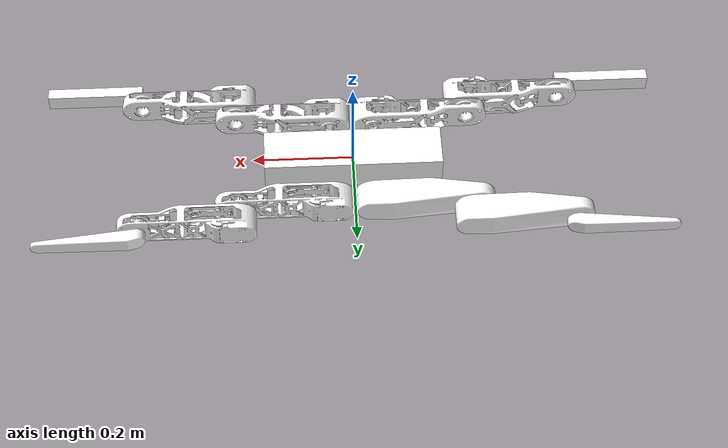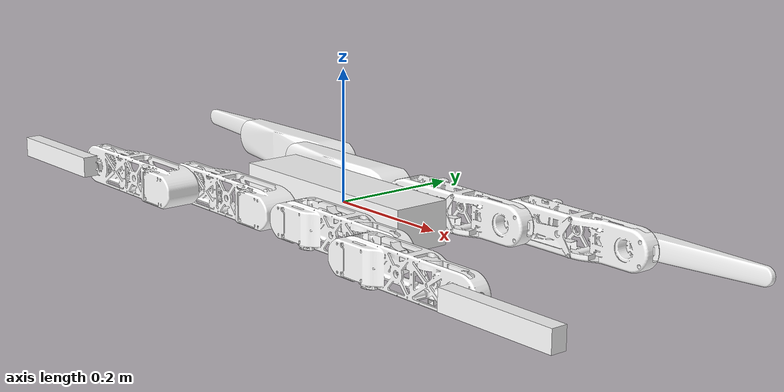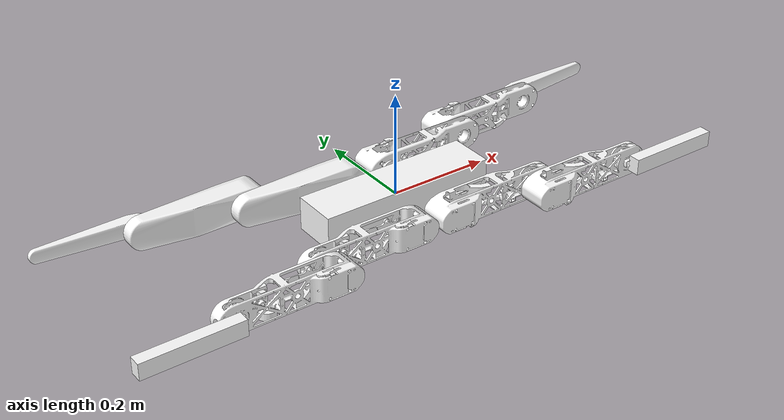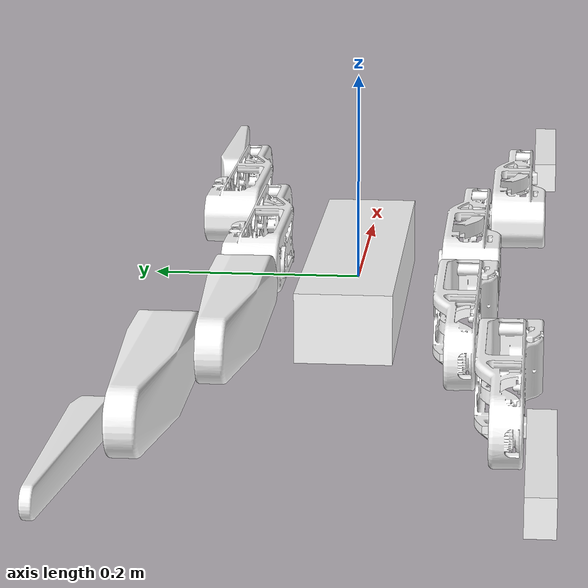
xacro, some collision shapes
<?xml version="1.0"?>
<robot name="mulinex" xmlns:xacro="http://ros.org/wiki/xacro">

    <xacro:include filename="$(find mulinex_description)/urdf/links.xacro" />
    <xacro:include filename="$(find mulinex_description)/urdf/leg.xacro" />
    <xacro:include filename="$(find mulinex_description)/urdf/material.xacro" />

    <xacro:property name="use_gazebo" value="true" />
    <xacro:property name="simplify_meshes_lower_leg" value="true"/>
    <xacro:property name="add_wheels" value="false"/>
    <xacro:property name="jnt_prefix" value="" />
    <xacro:property name="hind_haa" value="0.0" />
    <xacro:property name="hind_hfe" value="0.0" />
    <xacro:property name="hind_kfe" value="0.0" />
    <xacro:property name="front_haa" value="0.0" />
    <xacro:property name="front_hfe" value="0.0" />
    <xacro:property name="front_kfe" value="0.0" />

    <link name="${jnt_prefix}base_link">
        <visual>
            <material name="white" />
            <origin xyz="0 0 0" rpy="0 0 0" />
            <geometry>
                <mesh filename="${mulinex_base}" />
            </geometry>
        </visual>
        <collision>
            <origin xyz="0 0 0" rpy="0 0 0" />
            <geometry>
                <box size="0.353 0.090 0.066" />
            </geometry>
        </collision>
        <inertial>
            <mass value="1.3008737" />
            <origin xyz="-1.4565496e-03 -2.5110071e-03 -4.2484136e-03" rpy="0 0 0" />
            <inertia ixx="4.0762590e-03" ixy="-2.5234809e-05" ixz="-3.2587794e-06"
                iyy="9.2413606e-03" iyz="-8.0660183e-06"
                izz="1.2268730e-02" />
        </inertial>
    </link>

    <xacro:leg
        prefix="LH"
        gazebo="${use_gazebo}"
        jnt_pref="${jnt_prefix}"
        simplify_meshes="${simplify_meshes_lower_leg}"
        wheels="${add_wheels}" />
    <xacro:leg
        prefix="LF"
        gazebo="${use_gazebo}"
        jnt_pref="${jnt_prefix}"
        simplify_meshes="${simplify_meshes_lower_leg}"
        wheels="${add_wheels}" />
    <xacro:leg
        prefix="RF"
        gazebo="${use_gazebo}"
        jnt_pref="${jnt_prefix}"
        simplify_meshes="${simplify_meshes_lower_leg}"
        wheels="${add_wheels}" />
    <xacro:leg
        prefix="RH"
        gazebo="${use_gazebo}"
        jnt_pref="${jnt_prefix}"
        simplify_meshes="${simplify_meshes_lower_leg}"
        wheels="${add_wheels}" />

    <xacro:if value="${use_gazebo}">
        <gazebo reference="base_link">
            <material>Gazebo/White</material>
        </gazebo>
        <gazebo>
            <plugin filename="libgazebo_ros2_control.so" name="gazebo_ros2_control">
                <parameters>$(find mulinex_gazebo)/config/mulinex_gazebo_sim_jnt_PD_IMU.yaml</parameters>
            </plugin>
        </gazebo>

        <ros2_control name="GazeboSystem" type="system">
            <hardware>
                <plugin>gazebo_ros2_control/GazeboSystem</plugin>
            </hardware>

            <joint name="LH_HAA">
                <command_interface name="effort" />
                <state_interface name="position">
                    <param name="initial_value">-${hind_haa}</param>
                </state_interface>
                <state_interface name="velocity">
                    <param name="initial_value">0.0</param>
                </state_interface>
                <state_interface name="effort" />
            </joint>
            <joint name="LH_HFE">
                <command_interface name="effort" />
                <state_interface name="position">
                    <param name="initial_value">${hind_hfe}</param>
                </state_interface>
                <state_interface name="velocity">
                    <param name="initial_value">0.0</param>
                </state_interface>
                <state_interface name="effort" />
            </joint>
            <joint name="LH_KFE">
                <command_interface name="effort" />
                <state_interface name="position">
                    <param name="initial_value">${hind_kfe}</param>
                </state_interface>
                <state_interface name="velocity">
                    <param name="initial_value">0.0</param>
                </state_interface>
                <state_interface name="effort" />
            </joint>
            <joint name="LF_HAA">
                <command_interface name="effort" />
                <state_interface name="position">
                    <param name="initial_value">-${front_haa}</param>
                </state_interface>
                <state_interface name="velocity">
                    <param name="initial_value">0.0</param>
                </state_interface>
                <state_interface name="effort" />
            </joint>
            <joint name="LF_HFE">
                <command_interface name="effort" />
                <state_interface name="position">
                    <param name="initial_value">${front_hfe}</param>
                </state_interface>
                <state_interface name="velocity">
                    <param name="initial_value">0.0</param>
                </state_interface>
                <state_interface name="effort" />
            </joint>
            <joint name="LF_KFE">
                <command_interface name="effort" />
                <state_interface name="position">
                    <param name="initial_value">${front_kfe}</param>
                </state_interface>
                <state_interface name="velocity">
                    <param name="initial_value">0.0</param>
                </state_interface>
                <state_interface name="effort" />
            </joint>
            <joint name="RH_HAA">
                <command_interface name="effort" />
                <state_interface name="position">
                    <param name="initial_value">${hind_haa}</param>
                </state_interface>
                <state_interface name="velocity">
                    <param name="initial_value">0.0</param>
                </state_interface>
                <state_interface name="effort" />
            </joint>
            <joint name="RH_HFE">
                <command_interface name="effort" />
                <state_interface name="position">
                    <param name="initial_value">${hind_hfe}</param>
                </state_interface>
                <state_interface name="velocity">
                    <param name="initial_value">0.0</param>
                </state_interface>
                <state_interface name="effort" />
            </joint>
            <joint name="RH_KFE">
                <command_interface name="effort" />
                <state_interface name="position">
                    <param name="initial_value">${hind_kfe}</param>
                </state_interface>
                <state_interface name="velocity">
                    <param name="initial_value">0.0</param>
                </state_interface>
                <state_interface name="effort" />
            </joint>
            <joint name="RF_HAA">
                <command_interface name="effort" />
                <state_interface name="position">
                    <param name="initial_value">${front_haa}</param>
                </state_interface>
                <state_interface name="velocity">
                    <param name="initial_value">0.0</param>
                </state_interface>
                <state_interface name="effort" />
            </joint>
            <joint name="RF_HFE">
                <command_interface name="effort" />
                <state_interface name="position">
                    <param name="initial_value">${front_hfe}</param>
                </state_interface>
                <state_interface name="velocity">
                    <param name="initial_value">0.0</param>
                </state_interface>
                <state_interface name="effort" />
            </joint>
            <joint name="RF_KFE">
                <command_interface name="effort" />
                <state_interface name="position">
                    <param name="initial_value">${front_kfe}</param>
                </state_interface>
                <state_interface name="velocity">
                    <param name="initial_value">0.0</param>
                </state_interface>
                <state_interface name="effort" />
            </joint>
        </ros2_control>
        <gazebo reference="base_link">
            <sensor name="br_imu" type="imu">
                <always_on>true</always_on>
                <update_rate>100</update_rate>
                <imu>
                <angular_velocity>
                    <x>
                    <noise type="gaussian">
                        <mean>0.0</mean>
                        <stddev>2e-4</stddev>
                    </noise>
                    </x>
                    <y>
                    <noise type="gaussian">
                        <mean>0.0</mean>
                        <stddev>2e-4</stddev>
                    </noise>
                    </y>
                    <z>
                    <noise type="gaussian">
                        <mean>0.0</mean>
                        <stddev>2e-4</stddev>
                    </noise>
                    </z>
                </angular_velocity>
                <linear_acceleration>
                    <x>
                    <noise type="gaussian">
                        <mean>0.0</mean>
                        <stddev>1.7e-2</stddev>
                    </noise>
                    </x>
                    <y>
                    <noise type="gaussian">
                        <mean>0.0</mean>
                        <stddev>1.7e-2</stddev>
                    </noise>
                    </y>
                    <z>
                    <noise type="gaussian">
                        <mean>0.0</mean>
                        <stddev>1.7e-2</stddev>
                    </noise>
                    </z>
                </linear_acceleration>
                </imu>
                <plugin name="bytes_imu" filename="libgazebo_ros_imu_sensor.so">
                    <ros>
                        <namespace>imu</namespace>
                        <remapping>~/out:=data</remapping>
                    </ros>
                    <initial_orientation_as_reference>false</initial_orientation_as_reference>
                </plugin>
            </sensor>
        </gazebo>

    </xacro:if>
    <xacro:unless value="${use_gazebo}">
    </xacro:unless>
</robot>

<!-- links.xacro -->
<robot xmlns:xacro="http://ros.org/wiki/xacro">

    <xacro:property name="base_2_HAA_y" value="${81.0 * 0.001}" />
    <xacro:property name="base_2_HAA_x" value="${45.0 * 0.001}" />

    <xacro:property name="HAA_2_HFE_x" value="${190.0 * 0.001}" />
    <xacro:property name="HAA_2_HFE_y" value="${44.0 * 0.001}" />

    <xacro:property name="HFE_2_KFE_x" value="${190.0 * 0.001}" />
    <xacro:property name="HFE_2_KFE_y" value="${44.0 * 0.001}" />

    <xacro:property name="KFE_2_FOOT_x" value="${190.0 * 0.001}" />
    <xacro:property name="KFE_2_FOOT_y" value="${28.0 * 0.001}" />

    <xacro:property name="PI" value="3.141592" />

    <!-- MULINEX VISUALIZATION meshes -->
    <xacro:property name="mulinex_base"
        value="file://$(find mulinex_description)/meshes//Body.stl" />
    <xacro:property name="mulinex_module_left_front"
        value="file://$(find mulinex_description)/meshes//Module_left_front.stl" />
    <xacro:property name="mulinex_module_left_hind"
        value="file://$(find mulinex_description)/meshes//Module_left_hind.stl" />
    <xacro:property name="mulinex_module_2_left"
        value="file://$(find mulinex_description)/meshes//Module_2_left.stl" />
    <xacro:property name="mulinex_lower_leg_left"
        value="file://$(find mulinex_description)/meshes//Lower_leg_left.stl" />
    <xacro:property name="mulinex_module_right_front"
        value="file://$(find mulinex_description)/meshes//Module_right_front.stl" />
    <xacro:property name="mulinex_module_right_hind"
        value="file://$(find mulinex_description)/meshes//Module_right_hind.stl" />
    <xacro:property name="mulinex_module_2_right"
        value="file://$(find mulinex_description)/meshes//Module_2_right.stl" />
    <xacro:property name="mulinex_lower_leg_right"
        value="file://$(find mulinex_description)/meshes//Lower_leg_right.stl" />

    <!-- EACH MACRO CONSISTS OF THE LINK AND ITS PREVIOUS JOINT -->

    <!-- HIP -->
    <xacro:macro name="hip" params="prefix gazebo jnt_pref ">
        <!-- Transformation based on the position of each link -->
        <xacro:if value="${prefix == 'LF'}">
            <xacro:property name="base_to_hip_xyz" value="${base_2_HAA_x} ${base_2_HAA_y} 0" />
        </xacro:if>
        <xacro:if
            value="${prefix == 'LH'}">
            <xacro:property name="base_to_hip_xyz" value="${-base_2_HAA_x} ${base_2_HAA_y} 0" />
        </xacro:if>
        <xacro:if
            value="${prefix == 'RF'}">
            <xacro:property name="base_to_hip_xyz" value="${base_2_HAA_x} ${-base_2_HAA_y} 0" />
        </xacro:if>
        <xacro:if
            value="${prefix == 'RH'}">
            <xacro:property name="base_to_hip_xyz" value="${-base_2_HAA_x} ${-base_2_HAA_y} 0" />
        </xacro:if>

        <!-- Joint to fix the leg to the base -->
        <joint name="${prefix}_HAA" type="fixed">
            <parent link="${jnt_pref}base_link" />
            <child link="${jnt_pref}${prefix}_SHOULDER" />
            <origin xyz="${base_to_hip_xyz}" rpy="0 0 0" />
        </joint>
        <!-- Shoulder link -->
        <link name="${prefix}_SHOULDER">
            <visual>
                <material name="white" />
                <xacro:if value="${prefix == 'LF'}">
                    <origin xyz="0 0 0" rpy="0 0 0" />
                    <geometry>
                        <mesh filename="${mulinex_module_left_front}" />
                    </geometry>
                </xacro:if>
                <xacro:if value="${prefix == 'LH'}">
                    <origin xyz="0 0 0" rpy="0 0 0" />
                    <geometry>
                        <mesh filename="${mulinex_module_left_hind}" />
                    </geometry>
                </xacro:if>
                <xacro:if value="${prefix == 'RF'}">
                    <origin xyz="0 0 0" rpy="0 0 0" />
                    <geometry>
                        <mesh filename="${mulinex_module_right_front}" />
                    </geometry>
                </xacro:if>
                <xacro:if value="${prefix == 'RH'}">
                    <origin xyz="0 0 0" rpy="0 0 0" />
                    <geometry>
                        <mesh filename="${mulinex_module_right_hind}" />
                    </geometry>
                </xacro:if>
            </visual>

            <collision>
                <xacro:if value="${prefix == 'LF'}">
                    <origin xyz="0.0945 0 0" rpy="0 0 0" />
                    <geometry>
                        <box size="0.269 0.057 0.060" />
                    </geometry>
                </xacro:if>
                <xacro:if value="${prefix == 'LH'}">
                    <origin xyz="-0.0945 0 0" rpy="0 0 0" />
                    <geometry>
                        <box size="0.269 0.057 0.060" />
                    </geometry>
                </xacro:if>
                <xacro:if value="${prefix == 'RF'}">
                    <origin xyz="0.0945 0 0" rpy="0 0 0" />
                    <geometry>
                        <box size="0.269 0.057 0.060" />
                    </geometry>
                </xacro:if>
                <xacro:if value="${prefix == 'RH'}">
                    <origin xyz="-0.0945 0 0" rpy="0 0 0" />
                    <geometry>
                        <box size="0.269 0.057 0.060" />
                    </geometry>
                </xacro:if>
            </collision>

            <inertial>
                <mass value="0.47669673" />
                <xacro:if value="${prefix == 'LF'}">
                    <origin
                        xyz="7.2487360e-02 3.1582591e-02 -2.4812434e-03"
                        rpy="0 0 0" />
                    <inertia ixx="2.1574269e-04" ixy="-3.3437484e-05"
                        ixz="-2.4284668e-06" iyy="3.0607390e-03"
                        iyz="-2.0388977e-06" izz="3.0504273e-03" />
                </xacro:if>
                <xacro:if value="${prefix == 'LH'}">
                    <origin
                        xyz="-7.2487360e-02 3.1582591e-02 2.4812434e-03"
                        rpy="0 0 0" />
                    <inertia ixx="2.1574269e-04" ixy="3.3437484e-05"
                        ixz="-2.4284668e-06" iyy="3.0607390e-03"
                        iyz="-2.0388977e-06" izz="3.0504273e-03" />
                </xacro:if>
                <xacro:if value="${prefix == 'RF'}">
                    <origin
                        xyz="7.2487360e-02 -3.1582591e-02 2.4812434e-03"
                        rpy="0 0 0" />
                    <inertia ixx="2.1574269e-04" ixy="3.3437484e-05"
                        ixz="2.4284668e-06" iyy="3.0607390e-03"
                        iyz="-2.0388977e-06" izz="3.0504273e-03" />
                </xacro:if>
                <xacro:if value="${prefix == 'RH'}">
                    <origin
                        xyz="-7.2487360e-02 -3.1582591e-02 -2.4812434e-03"
                        rpy="0 0 0" />
                    <inertia ixx="2.1574269e-04" ixy="-3.3437484e-05"
                        ixz="2.4284668e-06" iyy="3.0607390e-03"
                        iyz="-2.0388977e-06" izz="3.0504273e-03" />
                </xacro:if>
            </inertial>
        </link>
        <xacro:if value="${gazebo}">
            <gazebo reference="${prefix}_SHOULDER">
                <material>Gazebo/White</material>
                <collision>
                    <surface>
                        <friction>
                            <ode>
                                <mu>1</mu>
                                <mu2>1</mu2>
                                <slip1>0</slip1>
                                <slip2>0</slip2>
                            </ode>
                        </friction>
                        <contact>
                            <ode>
                                <kp>1000000.0</kp>
                                <kd>100.0</kd>
                                <min_depth>0.001</min_depth>
                            </ode>
                        </contact>
                    </surface>
                </collision>
            </gazebo>
        </xacro:if>
    </xacro:macro>

    <!-- UPPER LEG -->
    <xacro:macro name="upper_leg" params="prefix gazebo jnt_pref">
        <!-- Transformation based on the position of each link -->
        <xacro:if value="${prefix == 'LF'}">
            <xacro:property name="hip_to_upper_leg_xyz" value="${HAA_2_HFE_x} ${HAA_2_HFE_y} 0" />
            <xacro:property name="hip_to_upper_leg_rpy" value="0 0 0" />
            <xacro:property name="axis" value="0 1 0"/>
        </xacro:if>
        <xacro:if
            value="${prefix == 'LH'}">
            <xacro:property name="hip_to_upper_leg_xyz" value="${-HAA_2_HFE_x} ${HAA_2_HFE_y} 0" />
            <xacro:property name="hip_to_upper_leg_rpy" value="0 0 0" />
            <xacro:property name="axis" value="0 1 0" />
        </xacro:if>
        <xacro:if
            value="${prefix == 'RF'}">
            <xacro:property name="hip_to_upper_leg_xyz" value="${HAA_2_HFE_x} ${-HAA_2_HFE_y} 0" />
            <xacro:property name="hip_to_upper_leg_rpy" value="0 0 0" />
            <xacro:property name="axis" value="0 -1 0" />
        </xacro:if>
        <xacro:if
            value="${prefix == 'RH'}">
            <xacro:property name="hip_to_upper_leg_xyz" value="${-HAA_2_HFE_x} ${-HAA_2_HFE_y} 0" />
            <xacro:property name="hip_to_upper_leg_rpy" value="0 0 0" />
            <xacro:property name="axis" value="0 -1 0" />
        </xacro:if>
        <xacro:property name="upper_to_lower_leg_rpy" value="0 0 0" />

        <!-- Hip joint -->
        <joint name="${prefix}_HFE" type="revolute">
            <parent link="${jnt_pref}${prefix}_SHOULDER" />
            <child link="${jnt_pref}${prefix}_UPPER_LEG" />
            <origin xyz="${hip_to_upper_leg_xyz}" rpy="${hip_to_upper_leg_rpy}" />
            <axis xyz="${axis}" />
            <limit effort="2.7" lower="-${PI}" upper="${PI}" velocity="1000" />
        </joint>
        <!-- Upper leg link -->
        <link name="${prefix}_UPPER_LEG">
            <visual>
                <material name="white" />
                <xacro:if value="${prefix == 'LF'}">
                    <origin xyz="0 0 0" rpy="0 0 0" />
                    <geometry>
                        <mesh filename="${mulinex_module_left_front}" />
                    </geometry>
                </xacro:if>

                <xacro:if value="${prefix == 'LH'}">
                    <origin xyz="0 0 0" rpy="0 0 0" />
                    <geometry>
                        <mesh filename="${mulinex_module_left_hind}" />
                    </geometry>
                </xacro:if>

                <xacro:if value="${prefix == 'RF'}">
                    <origin xyz="0 0 0" rpy="0 0 0" />
                    <geometry>
                        <mesh filename="${mulinex_module_right_front}" />
                    </geometry>
                </xacro:if>

                <xacro:if value="${prefix == 'RH'}">
                    <origin xyz="0 0 0" rpy="0 0 0" />
                    <geometry>
                        <mesh filename="${mulinex_module_right_hind}"/>
                    </geometry>
                </xacro:if>
            </visual>

            <collision>
                <xacro:if value="${prefix == 'LF'}">
                    <origin xyz="0.0945 0.015 0" rpy="0 0 0" />
                    <geometry>
                        <box size="0.269 0.057 0.060" />
                    </geometry>
                </xacro:if>
                <xacro:if value="${prefix == 'LH'}">
                    <origin xyz="-0.0945 0.015 0" rpy="0 0 0" />
                    <geometry>
                        <box size="0.269 0.057 0.060" />
                    </geometry>
                </xacro:if>
                <xacro:if value="${prefix == 'RF'}">
                    <origin xyz="0.0945 -0.015 0" rpy="0 0 0" />
                    <geometry>
                        <box size="0.269 0.057 0.060" />
                    </geometry>
                </xacro:if>
                <xacro:if value="${prefix == 'RH'}">
                    <origin xyz="-0.0945 -0.015 0" rpy="0 0 0" />
                    <geometry>
                        <box size="0.269 0.057 0.060" />
                    </geometry>
                </xacro:if>

            </collision>

            <inertial>
                <mass value="0.47669673" />
                <xacro:if value="${prefix == 'LF'}">
                    <origin
                        xyz="7.2487360e-02 3.1582591e-02 -2.4812434e-03"
                        rpy="0 0 0" />
                    <inertia ixx="2.1574269e-04" ixy="-3.3437484e-05"
                        ixz="-2.4284668e-06" iyy="3.0607390e-03"
                        iyz="-2.0388977e-06" izz="3.0504273e-03" />
                </xacro:if>
                <xacro:if value="${prefix == 'LH'}">
                    <origin
                        xyz="-7.2487360e-02 3.1582591e-02 2.4812434e-03"
                        rpy="0 0 0" />
                    <inertia ixx="2.1574269e-04" ixy="3.3437484e-05"
                        ixz="-2.4284668e-06" iyy="3.0607390e-03"
                        iyz="-2.0388977e-06" izz="3.0504273e-03" />
                </xacro:if>
                <xacro:if value="${prefix == 'RF'}">
                    <origin
                        xyz="7.2487360e-02 -3.1582591e-02 2.4812434e-03"
                        rpy="0 0 0" />
                    <inertia ixx="2.1574269e-04" ixy="3.3437484e-05"
                        ixz="2.4284668e-06" iyy="3.0607390e-03"
                        iyz="-2.0388977e-06" izz="3.0504273e-03" />
                </xacro:if>
                <xacro:if value="${prefix == 'RH'}">
                    <origin
                        xyz="-7.2487360e-02 -3.1582591e-02 -2.4812434e-03"
                        rpy="0 0 0" />
                    <inertia ixx="2.1574269e-04" ixy="-3.3437484e-05"
                        ixz="2.4284668e-06" iyy="3.0607390e-03"
                        iyz="-2.0388977e-06" izz="3.0504273e-03" />
                </xacro:if>
            </inertial>
        </link>
        <xacro:if value="${gazebo}">
            <gazebo reference="${prefix}_UPPER_LEG">
                <material>Gazebo/White</material>
                <collision>
                    <surface>
                        <friction>
                            <ode>
                                <mu>1</mu>
                                <mu2>1</mu2>
                                <slip1>0</slip1>
                                <slip2>0</slip2>
                            </ode>
                        </friction>
                        <contact>
                            <ode>
                                <kp>1000000.0</kp>
                                <kd>100.0</kd>
                                <min_depth>0.001</min_depth>
                            </ode>
                        </contact>
                    </surface>
                </collision>
            </gazebo>
        </xacro:if>
    </xacro:macro>

    <!-- LOWER LEG -->
    <xacro:macro name="lower_leg" params="prefix gazebo jnt_pref simplify_meshes wheels">
        <!-- Transformation based on the position of each link -->
        <xacro:if value="${prefix == 'LF'}">
            <xacro:property name="upper_to_lower_leg_xyz" value="${HFE_2_KFE_x} ${HFE_2_KFE_y} 0" />
            <xacro:property name="axis" value="0 1 0" />
        </xacro:if>
        <xacro:if
            value="${prefix == 'LH'}">
            <xacro:property name="upper_to_lower_leg_xyz" value="${-HFE_2_KFE_x} ${HFE_2_KFE_y} 0" />
            <xacro:property name="axis" value="0 1 0" />
        </xacro:if>
        <xacro:if
            value="${prefix == 'RF'}">
            <xacro:property name="upper_to_lower_leg_xyz" value="${HFE_2_KFE_x} ${-HFE_2_KFE_y} 0" />
            <xacro:property name="axis" value="0 -1 0" />
        </xacro:if>
        <xacro:if
            value="${prefix == 'RH'}">
            <xacro:property name="upper_to_lower_leg_xyz" value="${-HFE_2_KFE_x} ${-HFE_2_KFE_y} 0" />
            <xacro:property name="axis" value="0 -1 0" />
        </xacro:if>
        <xacro:property name="upper_to_lower_leg_rpy" value="0 0 0" />

        <!-- Knee joint -->
        <joint name="${prefix}_KFE" type="revolute">
            <parent link="${jnt_pref}${prefix}_UPPER_LEG" />
            <child link="${jnt_pref}${prefix}_LOWER_LEG" />
            <origin xyz="${upper_to_lower_leg_xyz}" rpy="${upper_to_lower_leg_rpy}" />
            <axis xyz="${axis}" />
            <limit effort="2.7" lower="-${PI}" upper="${PI}" velocity="1000" />
        </joint>
        <!-- Lower leg link -->
        <link name="${prefix}_LOWER_LEG">
            <visual>
                <material name="white" />
                <xacro:if value="${prefix == 'LF'}">
                    <origin xyz="0 0 0" rpy="0 ${-PI/2} 0" />
                    <geometry>
                        <mesh filename="${mulinex_lower_leg_left}" />
                    </geometry>
                </xacro:if>
                <xacro:if value="${prefix == 'LH'}">
                    <origin xyz="0 0 0" rpy="0 ${PI/2} 0" />
                    <geometry>
                        <mesh filename="${mulinex_lower_leg_left}" />
                    </geometry>
                </xacro:if>
                <xacro:if value="${prefix == 'RF'}">
                    <origin xyz="0 0 0" rpy="0 ${-PI/2} 0" />
                    <geometry>
                        <mesh filename="${mulinex_lower_leg_right}" />
                    </geometry>
                </xacro:if>
                <xacro:if value="${prefix == 'RH'}">
                    <origin xyz="0 0 0" rpy="0 ${PI/2} 0" />
                    <geometry>
                        <mesh filename="${mulinex_lower_leg_right}" />
                    </geometry>
                </xacro:if>
            </visual>
            <collision name="${prefix}_LOWER_LEG">
                <!-- Real meshes -->
                <xacro:unless value="${simplify_meshes}">
                    <xacro:if value="${prefix == 'LF'}">
                        <origin xyz="0 0 0" rpy="0 ${-PI/2} 0" />
                        <geometry>
                            <mesh filename="${mulinex_lower_leg_left}" />
                        </geometry>
                    </xacro:if>
                    <xacro:if value="${prefix == 'LH'}">
                        <origin xyz="0 0 0" rpy="0 ${PI/2} 0" />
                        <geometry>
                            <mesh filename="${mulinex_lower_leg_left}" />
                        </geometry>
                    </xacro:if>
                    <xacro:if value="${prefix == 'RF'}">
                        <origin xyz="0 0 0" rpy="0 ${-PI/2} 0" />
                        <geometry>
                            <mesh filename="${msphereulinex_lower_leg_right}" />
                        </geometry>
                    </xacro:if>
                    <xacro:if value="${prefix == 'RH'}">
                        <origin xyz="0 0 0" rpy="0 ${PI/2} 0" />
                        <geometry>
                            <mesh filename="${mulinex_lower_leg_right}" />
                        </geometry>
                    </xacro:if>
                </xacro:unless>
                <!-- Simplified meshes -->
                <xacro:if value="${simplify_meshes}">
                    <xacro:if value="${prefix == 'LF'}">
                        <origin xyz="0.096 0.012 0.0" rpy="0 ${-PI/2} 0" />
                        <geometry>
                            <box size="0.032 0.024 0.192" />
                        </geometry>
                    </xacro:if>
                    <xacro:if value="${prefix == 'LH'}">
                        <origin xyz="-0.096 0.012 0.0" rpy="0 ${PI/2} 0" />
                        <geometry>
                            <box size="0.032 0.024 0.192" />
                        </geometry>
                    </xacro:if>
                    <xacro:if value="${prefix == 'RF'}">
                        <origin xyz="0.096 -0.012 0.0" rpy="0 ${-PI/2} 0" />
                        <geometry>
                            <box size="0.032 0.024 0.192" />
                        </geometry>
                    </xacro:if>
                    <xacro:if value="${prefix == 'RH'}">
                        <origin xyz="-0.096 -0.012 0.0" rpy="0 ${PI/2} 0" />
                        <geometry>
                            <box size="0.032 0.024 0.192" />
                        </geometry>
                    </xacro:if>
                </xacro:if>
            </collision>
            <inertial>
                <mass value="0.046942" />
                <xacro:if value="${prefix == 'LF'}">
                    <origin
                        xyz="0.0660893 0.0198901 -1.552593e-05"
                        rpy="0 0 0" />
                    <inertia ixx="5.140780e-06" ixy="1.089102e-05"
                        ixz="2.468115e-08" iyy="0.00021242"
                        iyz="2.702972e-09" izz="0.00021154" />
                </xacro:if>
                <xacro:if value="${prefix == 'LH'}">
                    <origin
                        xyz="-0.0660893 0.0198901 1.552593e-05"
                        rpy="0 0 0" />
                    <inertia ixx="5.140780e-06" ixy="-1.089102e-05"
                        ixz="2.46811e-08" iyy="0.0002124295"
                        iyz="-2.702972e-09" izz="0.0002115478" />
                </xacro:if>
                <xacro:if value="${prefix == 'RF'}">
                    <origin
                        xyz="0.0660893 -0.0198901 -1.552593e-05"
                        rpy="0 0 0" />
                    <inertia ixx="5.140780e-06" ixy="1.089102e-05"
                        ixz="-2.468115e-08" iyy="0.00021242"
                        iyz="-2.702972e-09" izz="0.00021154" />
                </xacro:if>
                <xacro:if value="${prefix == 'RH'}">
                    <origin
                        xyz="-0.0660893 -0.0198901 1.552593e-05"
                        rpy="0 0 0" />
                    <inertia ixx="5.140780e-06" ixy="-1.089102e-05"
                        ixz="-2.46811e-08" iyy="0.0002124295"
                        iyz="2.702972e-09" izz="0.0002115478" />
                </xacro:if>
            </inertial>
        </link>
        <xacro:if value="${gazebo}">
            <gazebo reference="${prefix}_LOWER_LEG">
                <material>Gazebo/White</material>
                <collision>
                    <surface>
                        <friction>
                            <ode>
                                <mu>0.6</mu>
                                <mu2>0.6</mu2>
                                <slip1>0</slip1>
                                <slip2>0</slip2>
                            </ode>
                        </friction>
                        <contact>
                            <ode>
                                <kp>10000.0</kp>
                                <kd>100.0</kd>
                                <min_depth>0.001</min_depth>
                            </ode>
                        </contact>
                    </surface>
                </collision>
            </gazebo>
        </xacro:if>
        <!-- Include wheels -->
        <xacro:if value="${wheels}">
            <joint name="${prefix}_ANKLE" type="continuous">
                <parent link="${prefix}_LOWER_LEG" />
                <child link="${prefix}_WHEEL" />
                <xacro:if value="${prefix == 'LF'}">
                    <origin xyz="${KFE_2_FOOT_x} ${KFE_2_FOOT_y} 0" rpy="0 0 0" />
                    <axis xyz="0 1 0" />
                </xacro:if>
                <xacro:if value="${prefix == 'LH'}">
                    <origin xyz="${-KFE_2_FOOT_x} ${KFE_2_FOOT_y} 0" rpy="0 0 0" />
                    <axis xyz="0 1 0" />
                </xacro:if>
                <xacro:if value="${prefix == 'RF'}">
                    <origin xyz="${KFE_2_FOOT_x} ${-KFE_2_FOOT_y} 0" rpy="0 0 0" />
                    <axis xyz="0 1 0" />
                </xacro:if>
                <xacro:if value="${prefix == 'RH'}">
                    <origin xyz="${-KFE_2_FOOT_x} ${-KFE_2_FOOT_y} 0" rpy="0 0 0" />
                    <axis xyz="0 1 0" />
                </xacro:if>
            </joint>

            <link name="${prefix}_WHEEL">
                <visual>
                    <material name="white" />
                    <origin xyz="0 0 0" rpy="${PI/2} 0 0" />
                    <geometry>
                        <cylinder length="0.10" radius="0.015" />
                    </geometry>
                </visual>
                <xacro:if value="${simplify_meshes}">
                    <collision>
                        <origin xyz="0 0 0" rpy="${PI/2} 0 0" />
                        <geometry>
                            <cylinder length="0.10" radius="0.015" />
                        </geometry>
                    </collision>
                </xacro:if>
            </link>
            <xacro:if value="${gazebo}">
                <gazebo reference="${prefix}_WHEEL">
                    <material>Gazebo/White</material>
                    <collision>
                        <surface>
                            <friction>
                                <ode>
                                    <mu>0.6</mu>
                                    <mu2>0.6</mu2>
                                    <slip1>0</slip1>
                                    <slip2>0</slip2>
                                </ode>
                            </friction>
                            <contact>
                                <ode>
                                    <kp>10000.0</kp>
                                    <kd>100.0</kd>
                                    <min_depth>0.001</min_depth>
                                </ode>
                            </contact>
                        </surface>
                    </collision>
                    <sensor name="${prefix}_contactsensor_sensor" type="contact">
                        <always_on>true</always_on>
                        <update_rate>50</update_rate>
                        <contact>
                            <collision>
                                ${prefix}_LOWER_LEG_fixed_joint_lump__${prefix}_FOOT_collision_1</collision>
                        </contact>

                    </sensor>
                </gazebo>
            </xacro:if>

            <joint name="${prefix}_DIRECTION" type="fixed">
                <parent link="${prefix}_WHEEL" />
                <child link="${prefix}_INDICATOR" />
                <xacro:if value="${prefix == 'LF'}">
                    <origin xyz="0 0.0501 0" rpy="0 0 0" />
                </xacro:if>
                <xacro:if value="${prefix == 'LH'}">
                    <origin xyz="0 0.0501 0" rpy="0 0 0" />
                </xacro:if>
                <xacro:if value="${prefix == 'RF'}">
                    <origin xyz="0 -0.0501 0" rpy="0 0 0" />
                </xacro:if>
                <xacro:if value="${prefix == 'RH'}">
                    <origin xyz="0 -0.0501 0" rpy="0 0 0" />
                </xacro:if>
            </joint>

            <link name="${prefix}_INDICATOR">
                <visual>
                    <origin xyz="0 0 0.0075" rpy="0 0 0" />
                    <geometry>
                        <box size="0.004 0.0001 0.015" />
                    </geometry>
                    <material name="red" />
                </visual>
            </link>
        </xacro:if>
        <!-- Without wheels -->
        <xacro:unless value="${wheels}">
            <joint name="${prefix}_ANKLE" type="fixed">
                <parent link="${prefix}_LOWER_LEG" />
                <child link="${prefix}_FOOT" />

                <xacro:if value="${prefix == 'LF'}">
                    <origin xyz="${KFE_2_FOOT_x} ${KFE_2_FOOT_y} 0" rpy="0 0 0" />
                </xacro:if>
                <xacro:if value="${prefix == 'LH'}">
                    <origin xyz="${-KFE_2_FOOT_x} ${KFE_2_FOOT_y} 0" rpy="0 0 0" />
                </xacro:if>
                <xacro:if value="${prefix == 'RF'}">
                    <origin xyz="${KFE_2_FOOT_x} ${-KFE_2_FOOT_y} 0" rpy="0 0 0" />
                </xacro:if>
                <xacro:if value="${prefix == 'RH'}">
                    <origin xyz="${-KFE_2_FOOT_x} ${-KFE_2_FOOT_y} 0" rpy="0 0 0" />
                </xacro:if>

            </joint>

            <link name="${prefix}_FOOT">
                <xacro:if value="${simplify_meshes}">
                    <collision>
                        <origin xyz="0 0 0" rpy="0 0 0" />
                        <geometry>
                            <sphere radius="0.015" />
                        </geometry>
                    </collision>
                </xacro:if>
            </link>
            <xacro:if value="${gazebo}">
                <gazebo reference="${prefix}_FOOT">
                    <material>Gazebo/White</material>
                    <collision>
                        <surface>
                            <friction>
                                <ode>
                                    <mu>0.6</mu>
                                    <mu2>0.6</mu2>
                                    <slip1>0</slip1>
                                    <slip2>0</slip2>
                                </ode>
                            </friction>
                            <contact>
                                <ode>
                                    <kp>10000.0</kp>
                                    <kd>100.0</kd>
                                    <min_depth>0.001</min_depth>
                                </ode>
                            </contact>
                        </surface>
                    </collision>
                    <sensor name="${prefix}_contactsensor_sensor" type="contact">
                        <always_on>true</always_on>
                        <update_rate>50</update_rate>
                        <contact>
                            <collision>
                                ${prefix}_LOWER_LEG_fixed_joint_lump__${prefix}_FOOT_collision_1</collision>

                        </contact>

                    </sensor>
                </gazebo>
            </xacro:if>
        </xacro:unless>
    </xacro:macro>

</robot>

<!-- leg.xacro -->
<robot xmlns:xacro="http://ros.org/wiki/xacro">

    <xacro:include filename="$(find mulinex_description)/urdf/links.xacro" />
    <xacro:property name="PI" value="3.141592" />

    <xacro:macro name="leg" params="prefix gazebo jnt_pref simplify_meshes wheels">
        <!-- Module 1 -->
        <xacro:hip
            prefix="${prefix}"
            gazebo="${gazebo}"
            jnt_pref="${jnt_pref}"
        />
        <!-- Module 2 link -->
        <xacro:upper_leg
            prefix="${prefix}"
            gazebo="${gazebo}"
            jnt_pref="${jnt_pref}" />
        <!-- Lower leg link -->
        <xacro:lower_leg
            prefix="${prefix}"
            gazebo="${gazebo}"
            jnt_pref="${jnt_pref}"
            simplify_meshes="${simplify_meshes}"
            wheels="${wheels}" />
    </xacro:macro>

</robot>

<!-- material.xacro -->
<robot xmlns:xacro="http://www.ros.org/wiki/xacro">

  <material name="black">
    <color rgba="0.0 0.0 0.0 1.0"/>
  </material>

  <material name="blue">
    <color rgba="0.0 0.0 0.8 1.0"/>
  </material>

  <material name="green">
    <color rgba="0.0 0.8 0.0 1.0"/>
  </material>

  <material name="grey">
    <color rgba="0.2 0.2 0.2 1.0"/>
  </material>

  <material name="orange">
    <color rgba="${255/255} ${108/255} ${10/255} 0.5"/>
  </material>

  <material name="brown">
    <color rgba="${222/255} ${207/255} ${195/255} 1.0"/>
  </material>

  <material name="red">
    <color rgba="0.8 0.0 0.0 1.0"/>
  </material>

  <material name="white">
    <color rgba="1.0 1.0 1.0 1.0"/>
  </material>

</robot>
